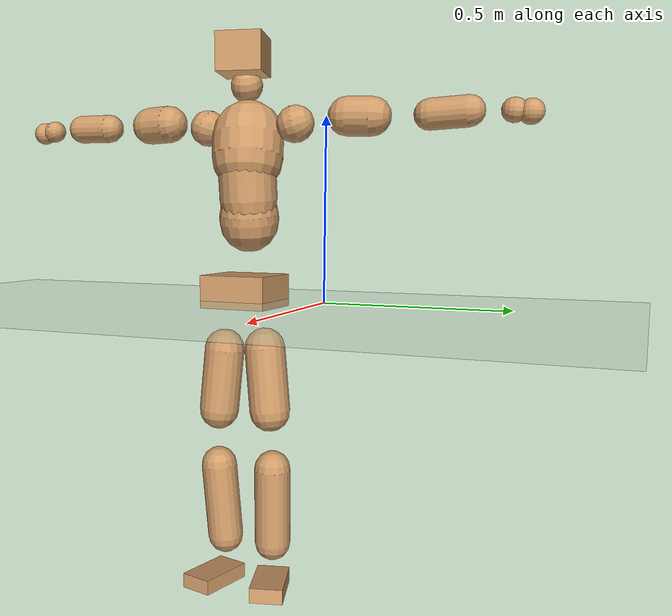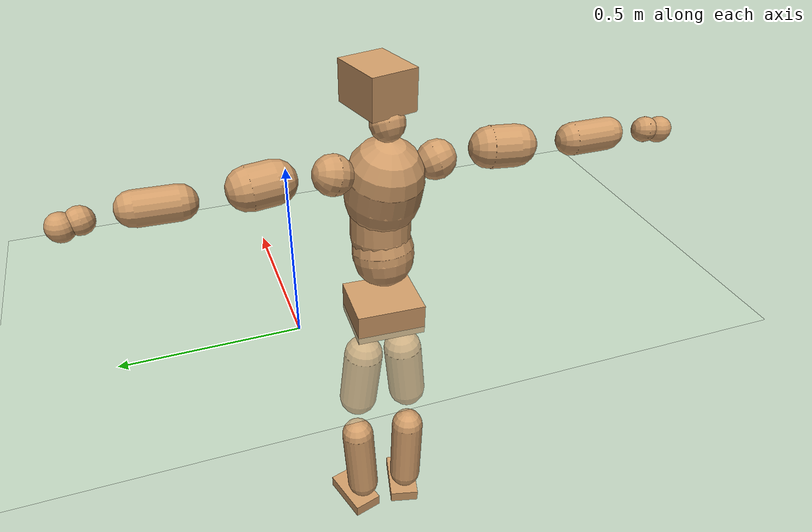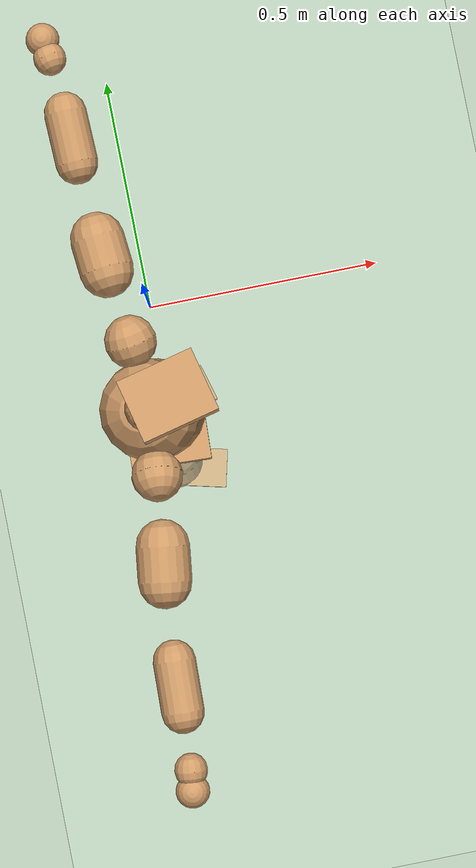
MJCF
<mujoco model="humanoid">
  <compiler coordinate="local" angle="radian"/>
  <default>
    <joint damping="0.0" armature="0.01" stiffness="0.0" limited="true"/>
    <geom conaffinity="1" condim="3" contype="7" margin="0.001" rgba="0.8 0.6 .4 1"/>
  </default>
  <asset>
    <texture type="skybox" builtin="gradient" rgb1=".4 .5 .6" rgb2="0 0 0" width="100" height="100"/>
    <texture builtin="flat" height="1278" mark="cross" markrgb="1 1 1" name="texgeom" random="0.01" rgb1="0.8 0.6 0.4" rgb2="0.8 0.6 0.4" type="cube" width="127"/>
    <texture builtin="checker" height="100" name="texplane" rgb1="0 0 0" rgb2="0.8 0.8 0.8" type="2d" width="100"/>
    <material name="MatPlane" reflectance="0.5" shininess="1" specular="1" texrepeat="60 60" texture="texplane"/>
    <material name="geom" texture="texgeom" texuniform="true"/>
  </asset>
  <worldbody>
    <light cutoff="100" diffuse="1 1 1" dir="-0 0 -1.3" directional="true" exponent="1" pos="0 0 1.3" specular=".1 .1 .1"/>
    <geom conaffinity="1" condim="3" name="floor" pos="0 0 0" rgba="0.8 0.9 0.8 1" size="100 100 .2" type="plane" material="MatPlane"/>
    <body name="Pelvis" pos="-0.005 -0.2477 0.0308">
      <freejoint name="Pelvis"/>
      <geom type="box" contype="1" conaffinity="1" density="5359.375066" pos="-0.0099 0.0004 -0.0074" size="0.0861 0.0982 0.0463" quat="0.9998 0.0000 0.0000 -0.0197" name="Pelvis"/>
      <body name="L_Hip" pos="-0.0133 0.0532 -0.0811">
        <joint name="L_Hip_x" type="hinge" pos="0 0 0" axis="1 0 0" stiffness="1600" damping="160" armature="0.02" range="-180.0000 180.0000"/>
        <joint name="L_Hip_y" type="hinge" pos="0 0 0" axis="0 1 0" stiffness="1600" damping="160" armature="0.02" range="-180.0000 180.0000"/>
        <joint name="L_Hip_z" type="hinge" pos="0 0 0" axis="0 0 1" stiffness="1600" damping="160" armature="0.02" range="-180.0000 180.0000"/>
        <geom type="capsule" contype="1" conaffinity="1" density="2040.816327" size="0.0582" fromto="0.0028 0.0091 -0.0877 0.0087 0.0278 -0.2689" name="L_Hip"/>
        <body name="L_Knee" pos="0.0115 0.0368 -0.3565">
          <joint name="L_Knee_x" type="hinge" pos="0 0 0" axis="1 0 0" stiffness="1600" damping="160" armature="0.02" range="-180.0000 180.0000"/>
          <joint name="L_Knee_y" type="hinge" pos="0 0 0" axis="0 1 0" stiffness="1600" damping="160" armature="0.02" range="-180.0000 180.0000"/>
          <joint name="L_Knee_z" type="hinge" pos="0 0 0" axis="0 0 1" stiffness="1600" damping="160" armature="0.02" range="-180.0000 180.0000"/>
          <geom type="capsule" contype="1" conaffinity="1" density="1234.567901" size="0.0518" fromto="-0.0076 -0.0030 -0.0814 -0.0289 -0.0114 -0.3107" name="L_Knee"/>
          <body name="L_Ankle" pos="-0.0365 -0.0143 -0.3921">
            <joint name="L_Ankle_x" type="hinge" pos="0 0 0" axis="1 0 0" stiffness="1600" damping="160" armature="0.02" range="-180.0000 180.0000"/>
            <joint name="L_Ankle_y" type="hinge" pos="0 0 0" axis="0 1 0" stiffness="1600" damping="160" armature="0.02" range="-180.0000 180.0000"/>
            <joint name="L_Ankle_z" type="hinge" pos="0 0 0" axis="0 0 1" stiffness="1600" damping="160" armature="0.02" range="-180.0000 180.0000"/>
            <geom type="box" contype="1" conaffinity="1" density="999.999971" pos="0.0580 0.0162 -0.0275" size="0.0838 0.0476 0.0215" quat="0.9907 0.0000 0.0000 0.1357" name="L_Ankle"/>
            <body name="L_Toe" pos="0.1159 0.0324 -0.0551">
              <joint name="L_Toe_x" type="hinge" pos="0 0 0" axis="1 0 0" stiffness="1000" damping="100" armature="0.02" range="-180.0000 180.0000"/>
              <joint name="L_Toe_y" type="hinge" pos="0 0 0" axis="0 1 0" stiffness="1000" damping="100" armature="0.02" range="-180.0000 180.0000"/>
              <joint name="L_Toe_z" type="hinge" pos="0 0 0" axis="0 0 1" stiffness="1000" damping="100" armature="0.02" range="-180.0000 180.0000"/>
              <geom type="box" contype="1" conaffinity="1" density="8361720.300415" pos="0.0000 0.0000 0.0271" size="0.001 0.0024 0.0011" quat="0.9900 0.0000 0.0000 0.1413" name="L_Toe"/>
            </body>
          </body>
        </body>
      </body>
      <body name="R_Hip" pos="-0.0076 -0.055 -0.0906">
        <joint name="R_Hip_x" type="hinge" pos="0 0 0" axis="1 0 0" stiffness="1600" damping="160" armature="0.02" range="-180.0000 180.0000"/>
        <joint name="R_Hip_y" type="hinge" pos="0 0 0" axis="0 1 0" stiffness="1600" damping="160" armature="0.02" range="-180.0000 180.0000"/>
        <joint name="R_Hip_z" type="hinge" pos="0 0 0" axis="0 0 1" stiffness="1600" damping="160" armature="0.02" range="-180.0000 180.0000"/>
        <geom type="capsule" contype="1" conaffinity="1" density="2040.816327" size="0.0576" fromto="-0.0002 -0.0089 -0.0872 -0.0005 -0.0275 -0.2679" name="R_Hip"/>
        <body name="R_Knee" pos="-0.0007 -0.0364 -0.3551">
          <joint name="R_Knee_x" type="hinge" pos="0 0 0" axis="1 0 0" stiffness="1600" damping="160" armature="0.02" range="-180.0000 180.0000"/>
          <joint name="R_Knee_y" type="hinge" pos="0 0 0" axis="0 1 0" stiffness="1600" damping="160" armature="0.02" range="-180.0000 180.0000"/>
          <joint name="R_Knee_z" type="hinge" pos="0 0 0" axis="0 0 1" stiffness="1600" damping="160" armature="0.02" range="-180.0000 180.0000"/>
          <geom type="capsule" contype="1" conaffinity="1" density="1234.567901" size="0.0519" fromto="-0.0070 0.0040 -0.0815 -0.0263 0.0148 -0.3044" name="R_Knee"/>
          <body name="R_Ankle" pos="-0.0333 0.0187 -0.3858">
            <joint name="R_Ankle_x" type="hinge" pos="0 0 0" axis="1 0 0" stiffness="1600" damping="160" armature="0.02" range="-180.0000 180.0000"/>
            <joint name="R_Ankle_y" type="hinge" pos="0 0 0" axis="0 1 0" stiffness="1600" damping="160" armature="0.02" range="-180.0000 180.0000"/>
            <joint name="R_Ankle_z" type="hinge" pos="0 0 0" axis="0 0 1" stiffness="1600" damping="160" armature="0.02" range="-180.0000 180.0000"/>
            <geom type="box" contype="1" conaffinity="1" density="999.999994" pos="0.0615 -0.0150 -0.0281" size="0.0849 0.0478 0.0209" quat="0.9929 0.0000 0.0000 -0.1192" name="R_Ankle"/>
            <body name="R_Toe" pos="0.1231 -0.03 -0.0562">
              <joint name="R_Toe_x" type="hinge" pos="0 0 0" axis="1 0 0" stiffness="1000" damping="100" armature="0.02" range="-180.0000 180.0000"/>
              <joint name="R_Toe_y" type="hinge" pos="0 0 0" axis="0 1 0" stiffness="1000" damping="100" armature="0.02" range="-180.0000 180.0000"/>
              <joint name="R_Toe_z" type="hinge" pos="0 0 0" axis="0 0 1" stiffness="1000" damping="100" armature="0.02" range="-180.0000 180.0000"/>
              <geom type="box" contype="1" conaffinity="1" density="8230164.554223" pos="0.0000 0.0000 0.0280" size="0.0011 0.0024 0.001" quat="0.9939 0.0000 0.0000 -0.1098" name="R_Toe"/>
            </body>
          </body>
        </body>
      </body>
      <body name="Torso" pos="-0.0384 0.0042 0.1274">
        <joint name="Torso_x" type="hinge" pos="0 0 0" axis="1 0 0" stiffness="2000" damping="200" armature="0.02" range="-180.0000 180.0000"/>
        <joint name="Torso_y" type="hinge" pos="0 0 0" axis="0 1 0" stiffness="2000" damping="200" armature="0.02" range="-180.0000 180.0000"/>
        <joint name="Torso_z" type="hinge" pos="0 0 0" axis="0 0 1" stiffness="2000" damping="200" armature="0.02" range="-180.0000 180.0000"/>
        <geom type="capsule" contype="1" conaffinity="1" density="2040.816327" size="0.0841" fromto="0.0153 0.0035 0.0826 0.0111 0.0025 0.0596" name="Torso"/>
        <body name="Spine" pos="0.0264 0.0061 0.1423">
          <joint name="Spine_x" type="hinge" pos="0 0 0" axis="1 0 0" stiffness="2000" damping="200" armature="0.02" range="-180.0000 180.0000"/>
          <joint name="Spine_y" type="hinge" pos="0 0 0" axis="0 1 0" stiffness="2000" damping="200" armature="0.02" range="-180.0000 180.0000"/>
          <joint name="Spine_z" type="hinge" pos="0 0 0" axis="0 0 1" stiffness="2000" damping="200" armature="0.02" range="-180.0000 180.0000"/>
          <geom type="capsule" contype="1" conaffinity="1" density="2040.816327" size="0.0815" fromto="0.0062 -0.0018 0.0812 -0.0019 0.0005 -0.0242" name="Spine"/>
          <body name="Chest" pos="0.0044 -0.0013 0.057">
            <joint name="Chest_x" type="hinge" pos="0 0 0" axis="1 0 0" stiffness="2000" damping="200" armature="0.02" range="-180.0000 180.0000"/>
            <joint name="Chest_y" type="hinge" pos="0 0 0" axis="0 1 0" stiffness="2000" damping="200" armature="0.02" range="-180.0000 180.0000"/>
            <joint name="Chest_z" type="hinge" pos="0 0 0" axis="0 0 1" stiffness="2000" damping="200" armature="0.02" range="-180.0000 180.0000"/>
            <geom type="capsule" contype="1" conaffinity="1" density="2040.816327" size="0.101" fromto="-0.0211 -0.0059 0.0986 -0.0086 -0.0024 0.0403" name="Chest"/>
            <body name="Neck" pos="-0.0423 -0.0141 0.1999">
              <joint name="Neck_x" type="hinge" pos="0 0 0" axis="1 0 0" stiffness="1000" damping="100" armature="0.02" range="-180.0000 180.0000"/>
              <joint name="Neck_y" type="hinge" pos="0 0 0" axis="0 1 0" stiffness="1000" damping="100" armature="0.02" range="-180.0000 180.0000"/>
              <joint name="Neck_z" type="hinge" pos="0 0 0" axis="0 0 1" stiffness="1000" damping="100" armature="0.02" range="-180.0000 180.0000"/>
              <geom type="capsule" contype="1" conaffinity="1" density="1000" size="0.0449" fromto="0.0220 0.0045 0.0389 0.0210 0.0043 0.0371" name="Neck"/>
              <body name="Head" pos="0.043 0.0089 0.076">
                <joint name="Head_x" type="hinge" pos="0 0 0" axis="1 0 0" stiffness="1000" damping="100" armature="0.02" range="-180.0000 180.0000"/>
                <joint name="Head_y" type="hinge" pos="0 0 0" axis="0 1 0" stiffness="1000" damping="100" armature="0.02" range="-180.0000 180.0000"/>
                <joint name="Head_z" type="hinge" pos="0 0 0" axis="0 0 1" stiffness="1000" damping="100" armature="0.02" range="-180.0000 180.0000"/>
                <geom type="box" contype="1" conaffinity="1" density="2249.99994" pos="0.0225 0.0054 0.0390" size="0.0767 0.0627 0.0522" quat="0.9930 0.0000 0.0000 0.1183" name="Head"/>
              </body>
            </body>
            <body name="L_Thorax" pos="-0.0211 0.071 0.1095">
              <joint name="L_Thorax_x" type="hinge" pos="0 0 0" axis="1 0 0" stiffness="1000" damping="100" armature="0.02" range="-180.0000 180.0000"/>
              <joint name="L_Thorax_y" type="hinge" pos="0 0 0" axis="0 1 0" stiffness="1000" damping="100" armature="0.02" range="-180.0000 180.0000"/>
              <joint name="L_Thorax_z" type="hinge" pos="0 0 0" axis="0 0 1" stiffness="1000" damping="100" armature="0.02" range="-180.0000 180.0000"/>
              <geom type="capsule" contype="1" conaffinity="1" density="1000" size="0.0518" fromto="-0.0101 0.0604 0.0199 -0.0104 0.0623 0.0205" name="L_Thorax"/>
              <body name="L_Shoulder" pos="-0.0206 0.1227 0.0403">
                <joint name="L_Shoulder_x" type="hinge" pos="0 0 0" axis="1 0 0" stiffness="1000" damping="100" armature="0.02" range="-720.0000 720.0000"/>
                <joint name="L_Shoulder_y" type="hinge" pos="0 0 0" axis="0 1 0" stiffness="1000" damping="100" armature="0.02" range="-720.0000 720.0000"/>
                <joint name="L_Shoulder_z" type="hinge" pos="0 0 0" axis="0 0 1" stiffness="1000" damping="100" armature="0.02" range="-720.0000 720.0000"/>
                <geom type="capsule" contype="1" conaffinity="1" density="1000" size="0.054" fromto="-0.0082 0.0835 -0.0036 -0.0145 0.1485 -0.0064" name="L_Shoulder"/>
                <body name="L_Elbow" pos="-0.0227 0.232 -0.01">
                  <joint name="L_Elbow_x" type="hinge" pos="0 0 0" axis="1 0 0" stiffness="1000" damping="100" armature="0.02" range="-720.0000 720.0000"/>
                  <joint name="L_Elbow_y" type="hinge" pos="0 0 0" axis="0 1 0" stiffness="1000" damping="100" armature="0.02" range="-720.0000 720.0000"/>
                  <joint name="L_Elbow_z" type="hinge" pos="0 0 0" axis="0 0 1" stiffness="1000" damping="100" armature="0.02" range="-720.0000 720.0000"/>
                  <geom type="capsule" contype="1" conaffinity="1" density="1000" size="0.042" fromto="-0.0023 0.0719 0.0030 -0.0057 0.1736 0.0073" name="L_Elbow"/>
                  <body name="L_Wrist" pos="-0.008 0.2454 0.0103">
                    <joint name="L_Wrist_x" type="hinge" pos="0 0 0" axis="1 0 0" stiffness="600" damping="60" armature="0.02" range="-180.0000 180.0000"/>
                    <joint name="L_Wrist_y" type="hinge" pos="0 0 0" axis="0 1 0" stiffness="600" damping="60" armature="0.02" range="-180.0000 180.0000"/>
                    <joint name="L_Wrist_z" type="hinge" pos="0 0 0" axis="0 0 1" stiffness="600" damping="60" armature="0.02" range="-180.0000 180.0000"/>
                    <geom type="capsule" contype="1" conaffinity="1" density="1000" size="0.0324" fromto="-0.0069 0.0395 -0.0048 -0.0073 0.0415 -0.0050" name="L_Wrist"/>
                    <body name="L_Hand" pos="-0.0142 0.081 -0.0098">
                      <joint name="L_Hand_x" type="hinge" pos="0 0 0" axis="1 0 0" stiffness="600" damping="60" armature="0.02" range="-180.0000 180.0000"/>
                      <joint name="L_Hand_y" type="hinge" pos="0 0 0" axis="0 1 0" stiffness="600" damping="60" armature="0.02" range="-180.0000 180.0000"/>
                      <joint name="L_Hand_z" type="hinge" pos="0 0 0" axis="0 0 1" stiffness="600" damping="60" armature="0.02" range="-180.0000 180.0000"/>
                      <geom type="sphere" contype="1" conaffinity="1" density="1000" size="0.0334" pos="0.0000 0.0000 0.0000" name="L_Hand"/>
                    </body>
                  </body>
                </body>
              </body>
            </body>
            <body name="R_Thorax" pos="-0.0257 -0.0816 0.1075">
              <joint name="R_Thorax_x" type="hinge" pos="0 0 0" axis="1 0 0" stiffness="1000" damping="100" armature="0.02" range="-180.0000 180.0000"/>
              <joint name="R_Thorax_y" type="hinge" pos="0 0 0" axis="0 1 0" stiffness="1000" damping="100" armature="0.02" range="-180.0000 180.0000"/>
              <joint name="R_Thorax_z" type="hinge" pos="0 0 0" axis="0 0 1" stiffness="1000" damping="100" armature="0.02" range="-180.0000 180.0000"/>
              <geom type="capsule" contype="1" conaffinity="1" density="1000" size="0.051" fromto="-0.0051 -0.0542 0.0198 -0.0052 -0.0561 0.0205" name="R_Thorax"/>
              <body name="R_Shoulder" pos="-0.0103 -0.1104 0.0403">
                <joint name="R_Shoulder_x" type="hinge" pos="0 0 0" axis="1 0 0" stiffness="1000" damping="100" armature="0.02" range="-720.0000 720.0000"/>
                <joint name="R_Shoulder_y" type="hinge" pos="0 0 0" axis="0 1 0" stiffness="1000" damping="100" armature="0.02" range="-720.0000 720.0000"/>
                <joint name="R_Shoulder_z" type="hinge" pos="0 0 0" axis="0 0 1" stiffness="1000" damping="100" armature="0.02" range="-720.0000 720.0000"/>
                <geom type="capsule" contype="1" conaffinity="1" density="1000" size="0.0536" fromto="-0.0105 -0.0829 -0.0018 -0.0193 -0.1515 -0.0033" name="R_Shoulder"/>
                <body name="R_Elbow" pos="-0.0298 -0.2343 -0.0051">
                  <joint name="R_Elbow_x" type="hinge" pos="0 0 0" axis="1 0 0" stiffness="1000" damping="100" armature="0.02" range="-720.0000 720.0000"/>
                  <joint name="R_Elbow_y" type="hinge" pos="0 0 0" axis="0 1 0" stiffness="1000" damping="100" armature="0.02" range="-720.0000 720.0000"/>
                  <joint name="R_Elbow_z" type="hinge" pos="0 0 0" axis="0 0 1" stiffness="1000" damping="100" armature="0.02" range="-720.0000 720.0000"/>
                  <geom type="capsule" contype="1" conaffinity="1" density="1000" size="0.042" fromto="-0.0018 -0.0720 0.0012 -0.0043 -0.1726 0.0028" name="R_Elbow"/>
                  <body name="R_Wrist" pos="-0.0061 -0.2446 0.004">
                    <joint name="R_Wrist_x" type="hinge" pos="0 0 0" axis="1 0 0" stiffness="600" damping="60" armature="0.02" range="-180.0000 180.0000"/>
                    <joint name="R_Wrist_y" type="hinge" pos="0 0 0" axis="0 1 0" stiffness="600" damping="60" armature="0.02" range="-180.0000 180.0000"/>
                    <joint name="R_Wrist_z" type="hinge" pos="0 0 0" axis="0 0 1" stiffness="600" damping="60" armature="0.02" range="-180.0000 180.0000"/>
                    <geom type="capsule" contype="1" conaffinity="1" density="1000" size="0.0326" fromto="-0.0044 -0.0400 -0.0038 -0.0046 -0.0420 -0.0040" name="R_Wrist"/>
                    <body name="R_Hand" pos="-0.0091 -0.082 -0.0079">
                      <joint name="R_Hand_x" type="hinge" pos="0 0 0" axis="1 0 0" stiffness="600" damping="60" armature="0.02" range="-180.0000 180.0000"/>
                      <joint name="R_Hand_y" type="hinge" pos="0 0 0" axis="0 1 0" stiffness="600" damping="60" armature="0.02" range="-180.0000 180.0000"/>
                      <joint name="R_Hand_z" type="hinge" pos="0 0 0" axis="0 0 1" stiffness="600" damping="60" armature="0.02" range="-180.0000 180.0000"/>
                      <geom type="sphere" contype="1" conaffinity="1" density="1000" size="0.0335" pos="0.0000 0.0000 0.0000" name="R_Hand"/>
                    </body>
                  </body>
                </body>
              </body>
            </body>
          </body>
        </body>
      </body>
    </body>
  </worldbody>
  <actuator>
    <motor name="L_Hip_x" joint="L_Hip_x" gear="500"/>
    <motor name="L_Hip_y" joint="L_Hip_y" gear="500"/>
    <motor name="L_Hip_z" joint="L_Hip_z" gear="500"/>
    <motor name="L_Knee_x" joint="L_Knee_x" gear="500"/>
    <motor name="L_Knee_y" joint="L_Knee_y" gear="500"/>
    <motor name="L_Knee_z" joint="L_Knee_z" gear="500"/>
    <motor name="L_Ankle_x" joint="L_Ankle_x" gear="500"/>
    <motor name="L_Ankle_y" joint="L_Ankle_y" gear="500"/>
    <motor name="L_Ankle_z" joint="L_Ankle_z" gear="500"/>
    <motor name="L_Toe_x" joint="L_Toe_x" gear="500"/>
    <motor name="L_Toe_y" joint="L_Toe_y" gear="500"/>
    <motor name="L_Toe_z" joint="L_Toe_z" gear="500"/>
    <motor name="R_Hip_x" joint="R_Hip_x" gear="500"/>
    <motor name="R_Hip_y" joint="R_Hip_y" gear="500"/>
    <motor name="R_Hip_z" joint="R_Hip_z" gear="500"/>
    <motor name="R_Knee_x" joint="R_Knee_x" gear="500"/>
    <motor name="R_Knee_y" joint="R_Knee_y" gear="500"/>
    <motor name="R_Knee_z" joint="R_Knee_z" gear="500"/>
    <motor name="R_Ankle_x" joint="R_Ankle_x" gear="500"/>
    <motor name="R_Ankle_y" joint="R_Ankle_y" gear="500"/>
    <motor name="R_Ankle_z" joint="R_Ankle_z" gear="500"/>
    <motor name="R_Toe_x" joint="R_Toe_x" gear="500"/>
    <motor name="R_Toe_y" joint="R_Toe_y" gear="500"/>
    <motor name="R_Toe_z" joint="R_Toe_z" gear="500"/>
    <motor name="Torso_x" joint="Torso_x" gear="500"/>
    <motor name="Torso_y" joint="Torso_y" gear="500"/>
    <motor name="Torso_z" joint="Torso_z" gear="500"/>
    <motor name="Spine_x" joint="Spine_x" gear="500"/>
    <motor name="Spine_y" joint="Spine_y" gear="500"/>
    <motor name="Spine_z" joint="Spine_z" gear="500"/>
    <motor name="Chest_x" joint="Chest_x" gear="500"/>
    <motor name="Chest_y" joint="Chest_y" gear="500"/>
    <motor name="Chest_z" joint="Chest_z" gear="500"/>
    <motor name="Neck_x" joint="Neck_x" gear="500"/>
    <motor name="Neck_y" joint="Neck_y" gear="500"/>
    <motor name="Neck_z" joint="Neck_z" gear="500"/>
    <motor name="Head_x" joint="Head_x" gear="500"/>
    <motor name="Head_y" joint="Head_y" gear="500"/>
    <motor name="Head_z" joint="Head_z" gear="500"/>
    <motor name="L_Thorax_x" joint="L_Thorax_x" gear="500"/>
    <motor name="L_Thorax_y" joint="L_Thorax_y" gear="500"/>
    <motor name="L_Thorax_z" joint="L_Thorax_z" gear="500"/>
    <motor name="L_Shoulder_x" joint="L_Shoulder_x" gear="500"/>
    <motor name="L_Shoulder_y" joint="L_Shoulder_y" gear="500"/>
    <motor name="L_Shoulder_z" joint="L_Shoulder_z" gear="500"/>
    <motor name="L_Elbow_x" joint="L_Elbow_x" gear="500"/>
    <motor name="L_Elbow_y" joint="L_Elbow_y" gear="500"/>
    <motor name="L_Elbow_z" joint="L_Elbow_z" gear="500"/>
    <motor name="L_Wrist_x" joint="L_Wrist_x" gear="500"/>
    <motor name="L_Wrist_y" joint="L_Wrist_y" gear="500"/>
    <motor name="L_Wrist_z" joint="L_Wrist_z" gear="500"/>
    <motor name="L_Hand_x" joint="L_Hand_x" gear="500"/>
    <motor name="L_Hand_y" joint="L_Hand_y" gear="500"/>
    <motor name="L_Hand_z" joint="L_Hand_z" gear="500"/>
    <motor name="R_Thorax_x" joint="R_Thorax_x" gear="500"/>
    <motor name="R_Thorax_y" joint="R_Thorax_y" gear="500"/>
    <motor name="R_Thorax_z" joint="R_Thorax_z" gear="500"/>
    <motor name="R_Shoulder_x" joint="R_Shoulder_x" gear="500"/>
    <motor name="R_Shoulder_y" joint="R_Shoulder_y" gear="500"/>
    <motor name="R_Shoulder_z" joint="R_Shoulder_z" gear="500"/>
    <motor name="R_Elbow_x" joint="R_Elbow_x" gear="500"/>
    <motor name="R_Elbow_y" joint="R_Elbow_y" gear="500"/>
    <motor name="R_Elbow_z" joint="R_Elbow_z" gear="500"/>
    <motor name="R_Wrist_x" joint="R_Wrist_x" gear="500"/>
    <motor name="R_Wrist_y" joint="R_Wrist_y" gear="500"/>
    <motor name="R_Wrist_z" joint="R_Wrist_z" gear="500"/>
    <motor name="R_Hand_x" joint="R_Hand_x" gear="500"/>
    <motor name="R_Hand_y" joint="R_Hand_y" gear="500"/>
    <motor name="R_Hand_z" joint="R_Hand_z" gear="500"/>
  </actuator>
  <contact>
    <exclude body1="Torso" body2="Chest"/>
    <exclude body1="Head" body2="Chest"/>
    <exclude body1="R_Knee" body2="R_Toe"/>
    <exclude body1="R_Knee" body2="L_Ankle"/>
    <exclude body1="R_Knee" body2="L_Toe"/>
    <exclude body1="L_Knee" body2="L_Toe"/>
    <exclude body1="L_Knee" body2="R_Ankle"/>
    <exclude body1="L_Knee" body2="R_Toe"/>
    <exclude body1="L_Shoulder" body2="Chest"/>
    <exclude body1="R_Shoulder" body2="Chest"/>
  </contact>
  <sensor/>
  <size njmax="700" nconmax="700"/>
</mujoco>
